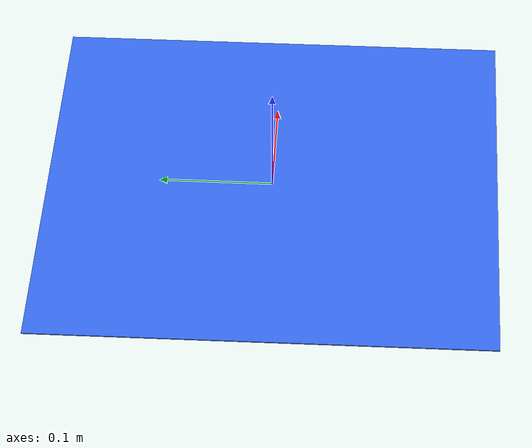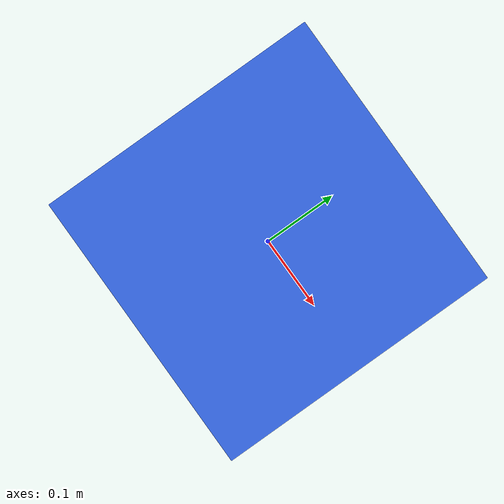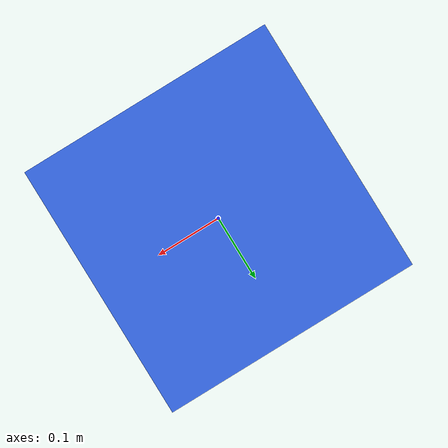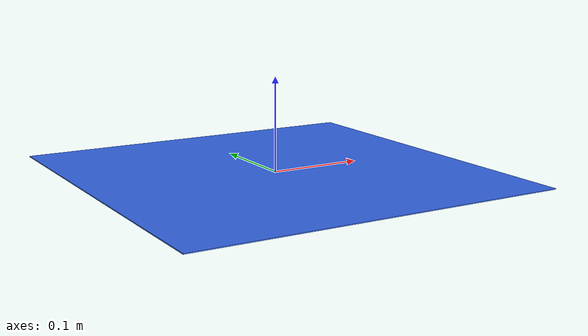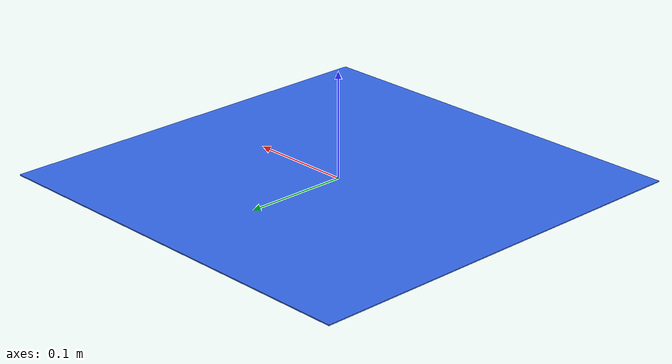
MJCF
<mujoco model="blue_zone">
  <default>
    <default class="visual">
      <!-- Visual only, no collision (contype=0, conaffinity=0) -->
      <geom group="1" type="box" contype="0" conaffinity="0" density="0" rgba="0.2 0.4 0.9 1.0"/>
    </default>
  </default>
  <asset>
  </asset>
  <worldbody>
    <body>
      <body name="object">
        <!-- Visual geometry: thin blue plane 40x40cm x 1mm thick -->
        <!-- Opaque blue (rgba="0.2 0.4 0.9 1.0") -->
        <geom size="0.2 0.2 0.0005" class="visual"/>
      </body>
      <site name="bottom_site" pos="0 0 -0.0005" rgba="0 0 0 0" size="0.005"/>
      <site name="top_site" pos="0 0 0.0005" rgba="0 0 0 0" size="0.005"/>
      <site name="horizontal_radius_site" pos="0.28284 0.28284 0" rgba="0 0 0 0" size="0.005"/>
    </body>
  </worldbody>
</mujoco>
